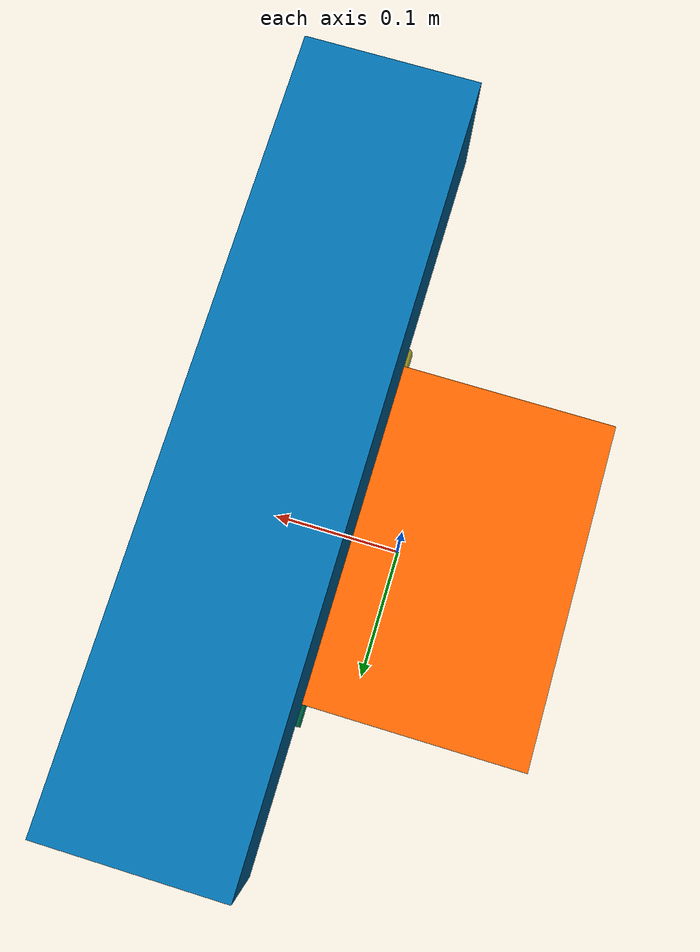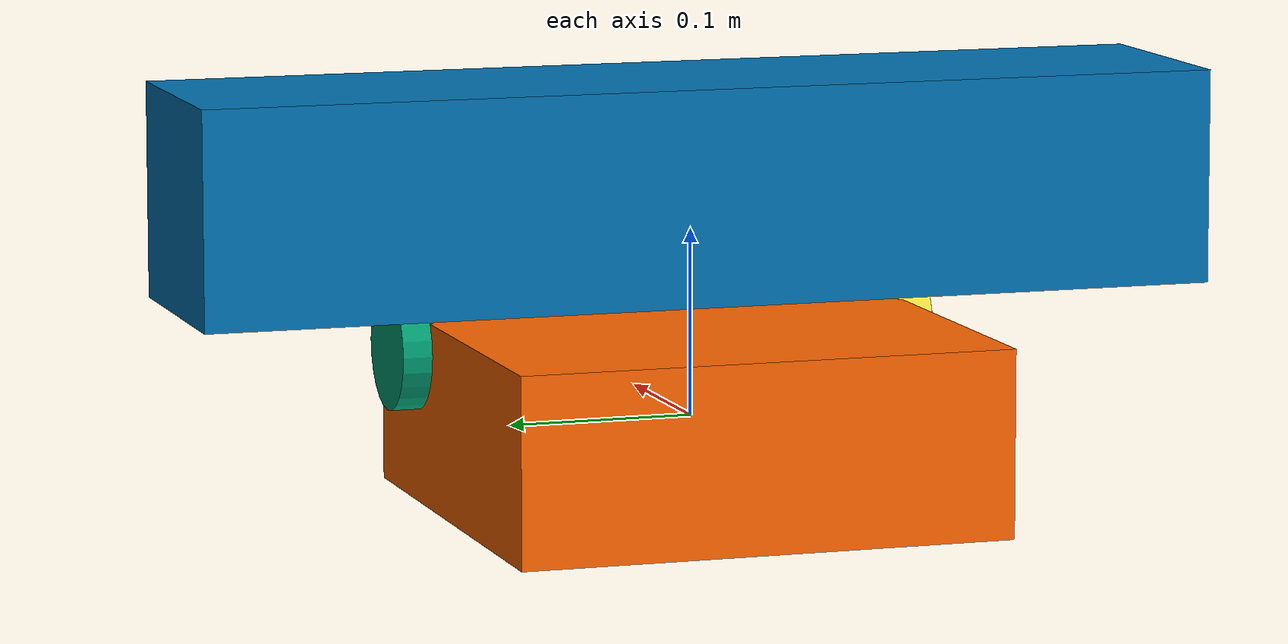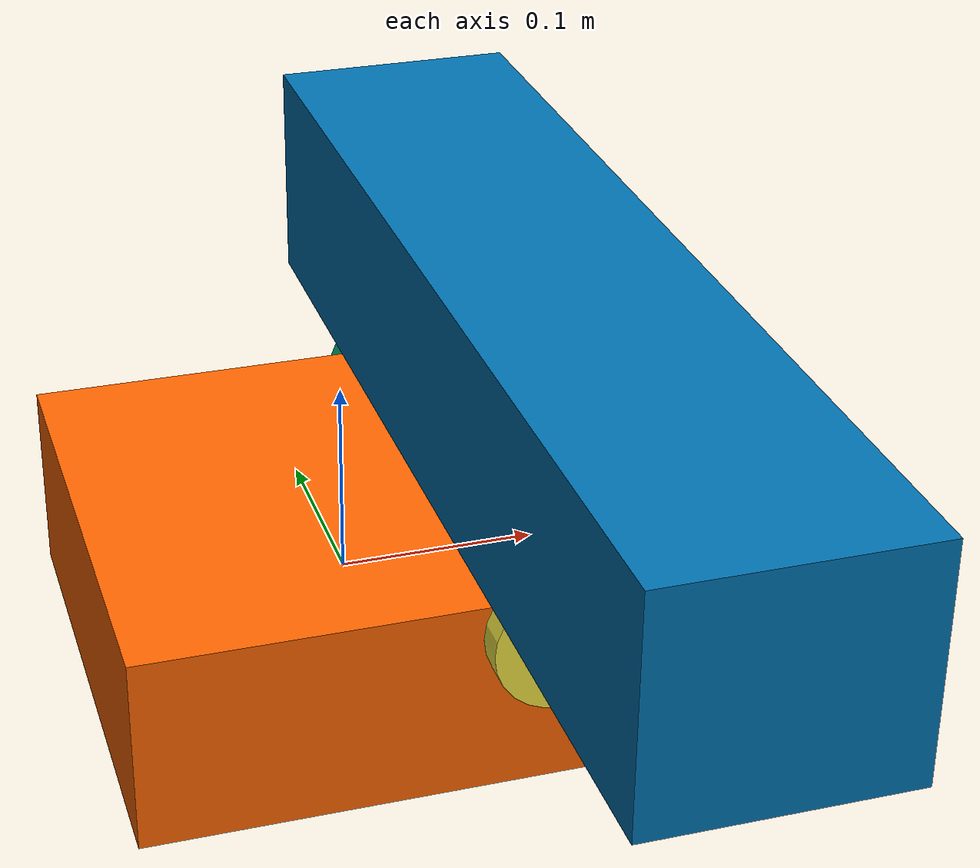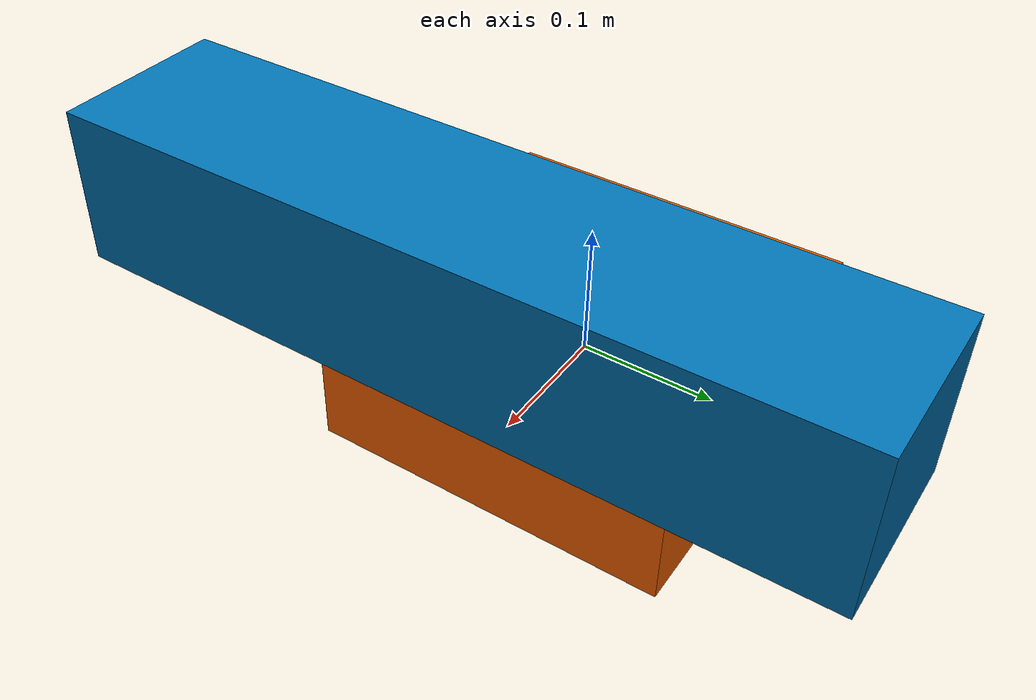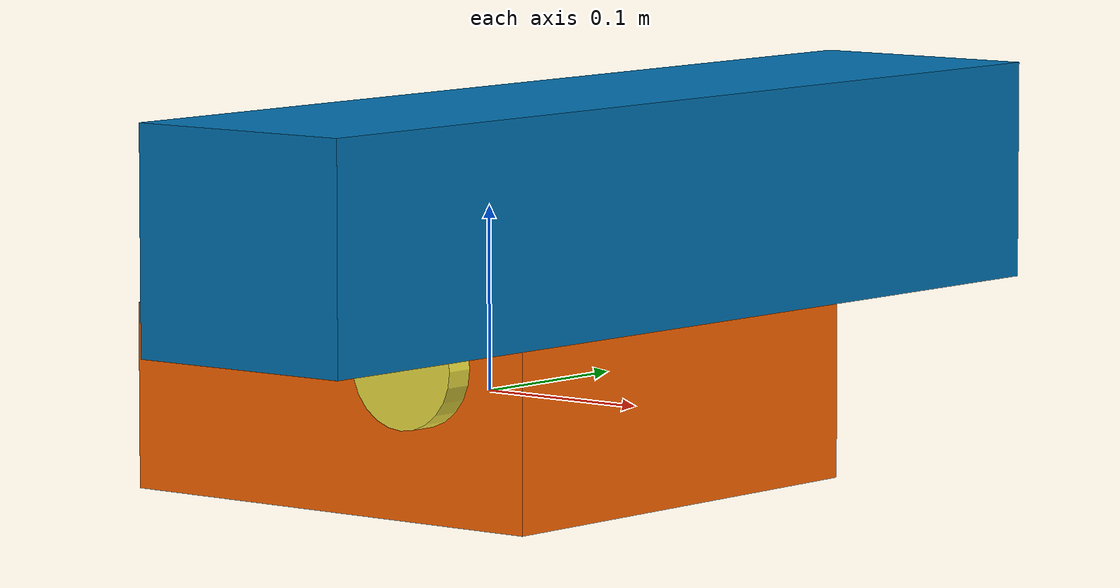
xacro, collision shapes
<?xml version="1.0" ?>
<robot name="turtlebot3" xmlns:xacro="http://ros.org/wiki/xacro">

  <xacro:property name="r200_cam_offset_px" value="0.1" />
  <xacro:property name="r200_cam_offset_py" value="-0.028" />
  <xacro:property name="r200_cam_offset_pz" value="0.110" />

  <xacro:property name="r200_cam_rgb_px" value="0.005"/>
  <xacro:property name="r200_cam_rgb_py" value="0.018"/>
  <xacro:property name="r200_cam_rgb_pz" value="0.013"/>
  <xacro:property name="r200_cam_depth_offset" value="0.01"/>

  <xacro:property name="M_PI" value="3.1415926535897931" />

  <material name="black">
    <color rgba="0.0 0.0 0.0 1.0"/>
  </material>
  <material name="orange">
    <color rgba="1.0 0.4 0.0 1.0"/>
  </material>

  <link name="base_footprint"/>

  <joint name="base_joint" type="fixed">
    <origin xyz="0 0 0" rpy="0 0 0"/>
    <parent link="base_footprint"/>
    <child link="base_link" />
  </joint>

  <link name="base_link">
    <visual>
      <origin xyz="0 0 0.0" rpy="0 0 0"/>
      <geometry>
        <mesh filename="package://turtlebot3_description/meshes/turtlebot3_premium.stl" scale="0.001 0.001 0.001"/>
      </geometry>
      <material name="orange"/>
    </visual>
    <collision>
      <origin xyz="0 0 0.0" rpy="0 0 0"/>
      <geometry>
        <box size="0.266 0.266 0.1"/>
      </geometry>
      <material name="orange"/>
    </collision>
    <inertial>
      <origin xyz="0 0 0" rpy="0 0 0"/>
      <mass value="1"/>
      <inertia ixx="0.01" ixy="0.0" ixz="0.0"
               iyy="0.01" iyz="0.0"
               izz="0.01" />
    </inertial>
  </link>

  <joint name="wheel_left_joint" type="continuous">
    <parent link="base_link"/>
    <child link="wheel_left_link"/>
    <origin xyz="0.065 0.140 0.033" rpy="-1.570796327 0 0"/>
    <axis xyz="0 0 1"/>
  </joint>

  <link name="wheel_left_link">
    <visual>
      <origin xyz="0 0 0" rpy="0 0 0"/>
      <geometry>
        <cylinder length="0.018" radius="0.033"/>
      </geometry>
    </visual>
    <collision>
      <origin rpy="0 0 0" xyz="0 0 0"/>
      <geometry>
        <cylinder length="0.018" radius="0.033"/>
      </geometry>
    </collision>
    <inertial>
      <origin xyz="0 0 0" />
      <mass value="0.01" />
      <inertia ixx="0.001" ixy="0.0" ixz="0.0"
               iyy="0.001" iyz="0.0"
               izz="0.001" />
    </inertial>
  </link>

  <joint name="wheel_right_joint" type="continuous">
    <parent link="base_link"/>
    <child link="wheel_right_link"/>
    <origin xyz="0.065 -0.140 0.033" rpy="-1.570796327 0 0"/>
    <axis xyz="0 0 1"/>
  </joint>

  <link name="wheel_right_link">
    <visual>
      <origin xyz="0 0 0" rpy="0 0 0"/>
      <geometry>
        <cylinder length="0.018" radius="0.033"/>
      </geometry>
    </visual>
    <collision>
      <origin rpy="0 0 0" xyz="0 0 0"/>
      <geometry>
        <cylinder length="0.018" radius="0.033"/>
      </geometry>
    </collision>
    <inertial>
      <origin xyz="0 0 0" />
      <mass value="0.01" />
      <inertia ixx="0.001" ixy="0.0" ixz="0.0"
               iyy="0.001" iyz="0.0"
               izz="0.001" />
    </inertial>
  </link>

  <!-- camera body -->

  <joint name="camera_joint" type="fixed">
    <origin xyz="${r200_cam_offset_px} ${r200_cam_offset_py} ${r200_cam_offset_pz}" rpy="0 0 0"/>
    <parent link="base_link"/>
    <child link="camera_link" />
  </joint>
  <link name="camera_link">
    <visual>
     <origin xyz="0 0 0" rpy="${M_PI/2} 0 ${M_PI/2}"/>
      <geometry>
       <mesh filename="package://turtlebot3_description/meshes/sensors/r200.dae" />
      </geometry>
    </visual>
    <collision>
      <origin xyz="0.0 0.0 0.0" rpy="0 0 0"/>
      <geometry>
        <box size="0.130 0.567 0.118"/>
      </geometry>
    </collision>-->

    <!-- This inertial field needs doesn't contain reliable data!! -->
   <inertial>
      <mass value="0.564" />
      <origin xyz="0 0 0" />
      <inertia ixx="0.003881243" ixy="0.0" ixz="0.0"
               iyy="0.000498940" iyz="0.0"
               izz="0.003879257" />
    </inertial>
  </link>

  <!-- RGB joints & links -->

  <joint name="camera_rgb_joint" type="fixed">
    <origin xyz="${r200_cam_rgb_px} ${r200_cam_rgb_py} ${r200_cam_rgb_pz}" rpy="0 0 0"/>
    <parent link="camera_link"/>
    <child link="camera_rgb_frame" />
  </joint>
  <link name="camera_rgb_frame"/>

  <joint name="camera_rgb_optical_joint" type="fixed">
    <origin xyz="0 0 0" rpy="${-M_PI/2} 0 ${-M_PI/2}" />
    <parent link="camera_rgb_frame" />
    <child link="camera_rgb_optical_frame" />
  </joint>
  <link name="camera_rgb_optical_frame"/>

  <!--Depth joints & links -->

  <joint name="camera_depth_joint" type="fixed">
      <origin xyz="0 ${r200_cam_depth_offset} 0" rpy="0 0 0" />
      <parent link="camera_rgb_frame" />
      <child link="camera_depth_frame" />
  </joint>
  <link name="camera_depth_frame"/>

  <joint name="camera_depth_optical_joint" type="fixed">
      <origin xyz="0 0 0" rpy="${-M_PI/2} 0 ${-M_PI/2}" />
      <parent link="camera_depth_frame" />
      <child link="camera_depth_optical_frame" />
  </joint>
  <link name="camera_depth_optical_frame"/>

</robot>
